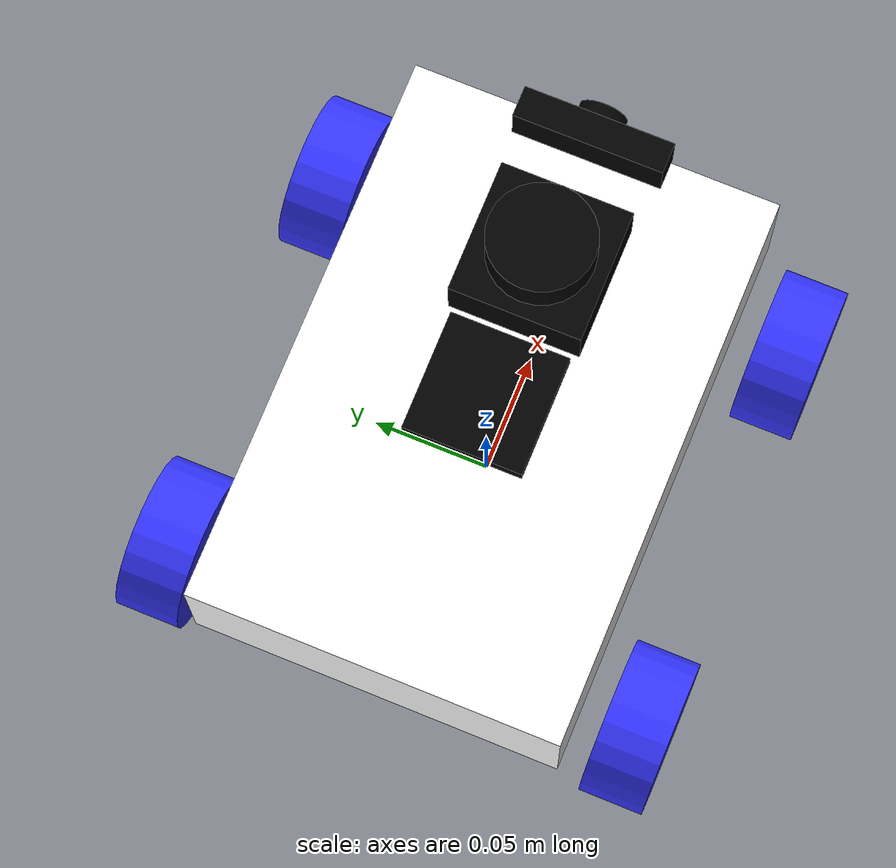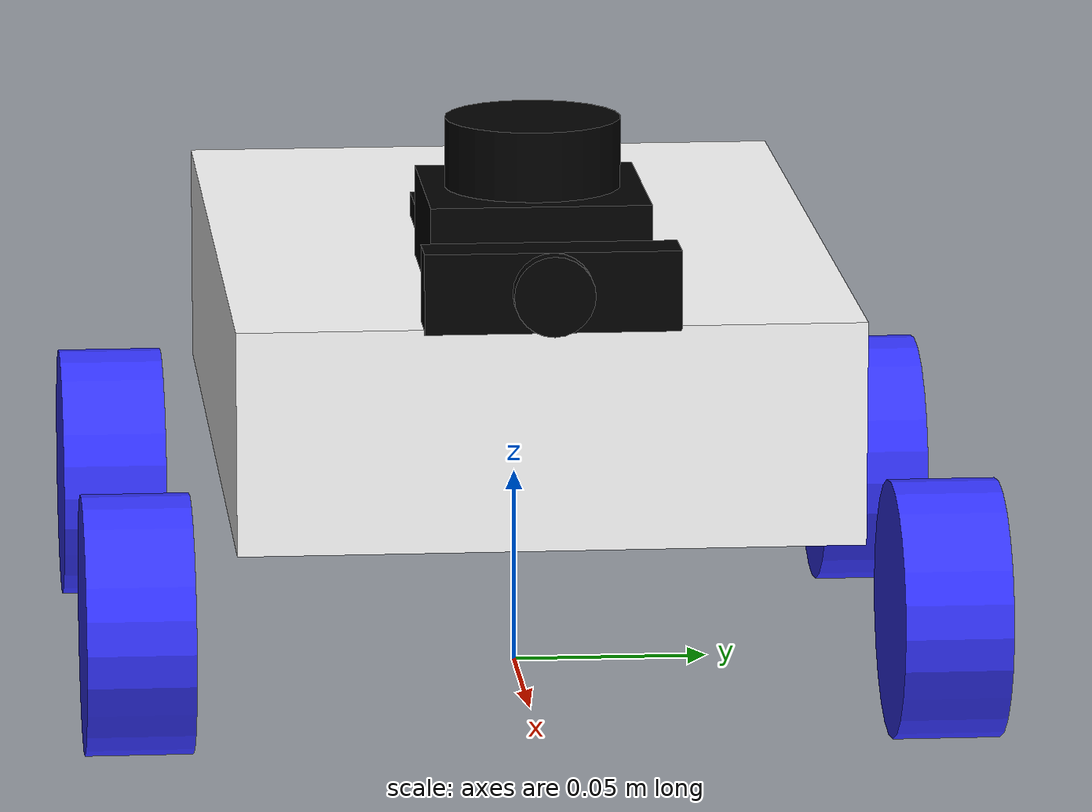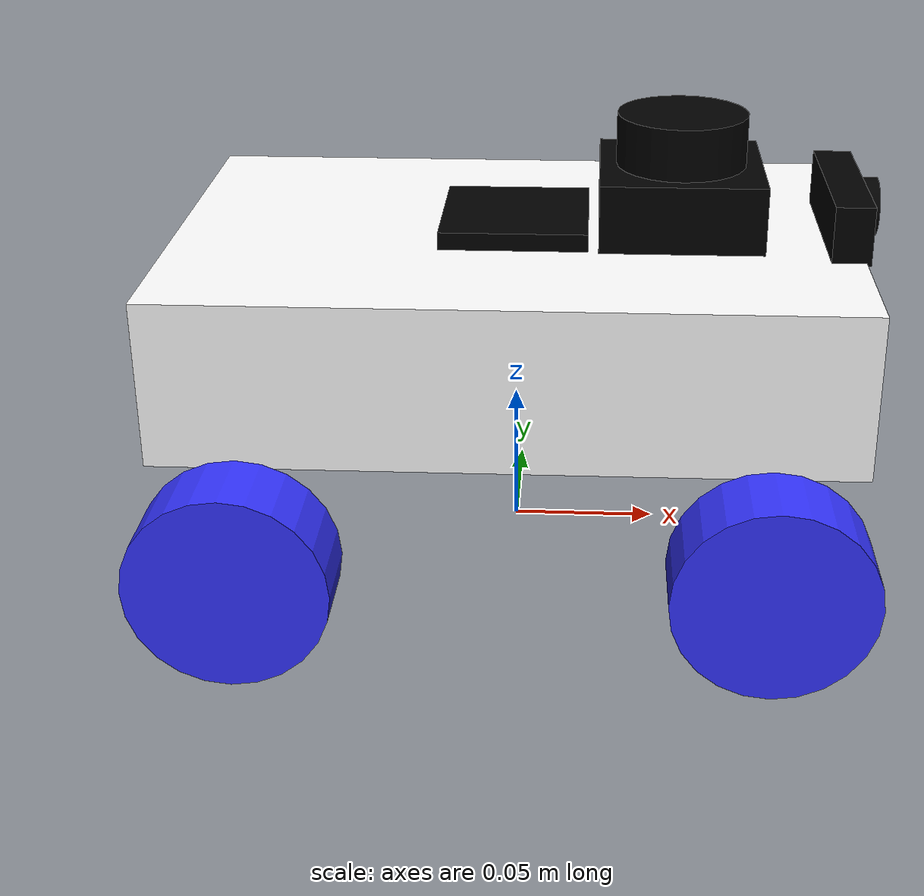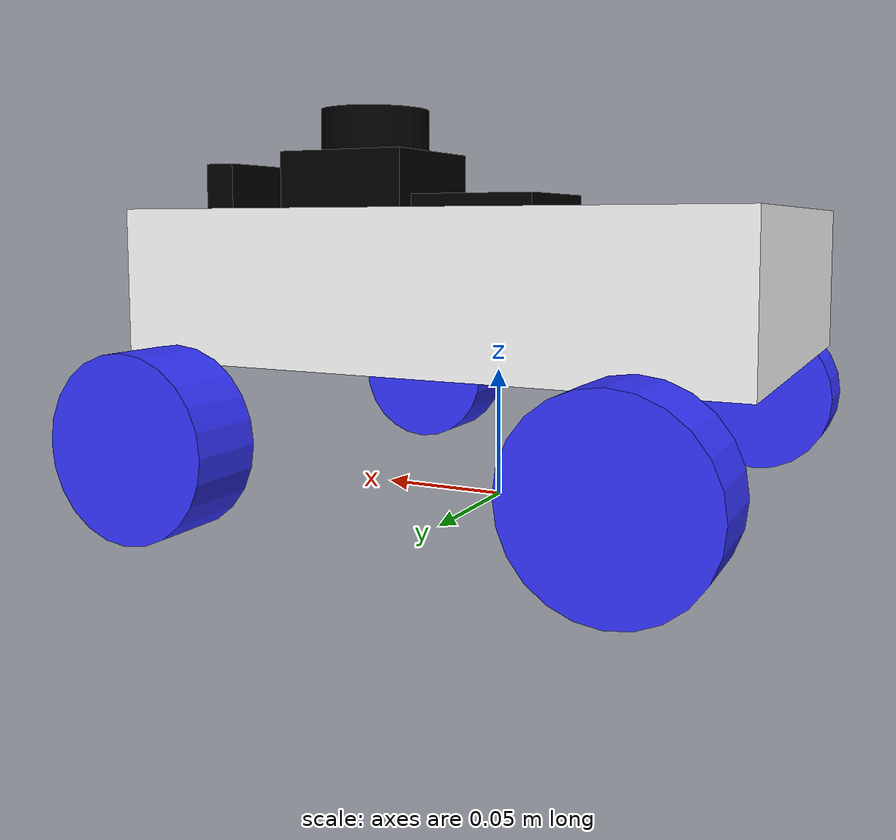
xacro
<?xml version="1.0"?>
<robot xmlns:xacro="http://www.ros.org/wiki/xacro"  name="robot">

    <xacro:arg name="use_ros2_control" default="true"/>
    <xacro:arg name="sim_mode" default="false"/>

    <xacro:include filename="robot_core.xacro" />

    <xacro:if value="$(arg use_ros2_control)">
        <xacro:include filename="ros2_control.xacro" />
    </xacro:if>
    <xacro:unless value="$(arg use_ros2_control)">
        <xacro:include filename="gazebo_control.xacro" />
    </xacro:unless>
    <xacro:include filename="lidar.xacro" />

    <xacro:include filename="camera.xacro" />

    <xacro:include filename="imu.xacro" />

</robot>

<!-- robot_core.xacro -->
<robot xmlns:xacro="http://www.ros.org/wiki/xacro" >

    <xacro:include filename="inertial_macros.xacro"/>

    <xacro:property name="chassis_length" value="0.335"/>
    <xacro:property name="chassis_width" value="0.265"/>
    <xacro:property name="chassis_height" value="0.138"/>
    <xacro:property name="chassis_mass" value="1.0"/>
    <xacro:property name="wheel_radius" value="0.033"/>
    <xacro:property name="wheel_thickness" value="0.026"/>
    <xacro:property name="wheel_mass" value="0.05"/>
    <xacro:property name="wheel_offset_x" value="0.226"/>
    <xacro:property name="wheel_offset_y" value="0.1485"/>
    <xacro:property name="wheel_offset_z" value="0.01"/>
    <xacro:property name="caster_wheel_radius" value="0.01"/>
    <xacro:property name="caster_wheel_mass" value="0.01"/>
    <xacro:property name="caster_wheel_offset_x" value="0.075"/>
    <xacro:property name="caster_wheel_offset_z" value="${wheel_offset_z - wheel_radius + caster_wheel_radius}"/>

    <material name="white">
        <color rgba="1 1 1 1" />
    </material>

    <material name="orange">
        <color rgba="1 0.3 0.1 1"/>
    </material>

    <material name="blue">
        <color rgba="0.2 0.2 1 1"/>
    </material>

    <material name="black">
        <color rgba="0 0 0 1"/>
    </material>

    <material name="red">
        <color rgba="1 0 0 1"/>
    </material>

    <!-- BASE LINK -->

    <link name="base_link">

    </link>

    <!-- BASE FOOOTPRINT -->
    <joint name= "base_footprint_joint" type="fixed">
        <parent link="base_link"/>
        <child link="base_footprint"/>
        <origin xyz= "0 0 0" rpy= "0 0 0"/>
    </joint>

    <link name= "base_footprint">

    </link>

    <!-- CHASSIS LINK -->

    <joint name="chassis_joint" type="fixed">
        <parent link="base_link"/>
        <child link="chassis"/>
        <origin xyz="-0.116 0 0.057"/>
    </joint>

    <link name="chassis">
        <visual>
            <origin xyz="0.116 0 0.028"/>
            <geometry>
                <box size="0.232 0.155 0.056"/>
            </geometry>
            <material name="white"/>
        </visual>
        <collision>
            <origin xyz="0.116 0 0.028"/>
            <geometry>
                <box size="0.232 0.155 0.056"/>
            </geometry>
        </collision>
        <xacro:inertial_box mass="0.5" x="0.232" y="0.155" z="0.056">
            <origin xyz="0.116 0 0.028" rpy="0 0 0"/>
        </xacro:inertial_box>
    </link>

    <gazebo reference="chassis">
        <material>Gazebo/White</material>
    </gazebo>

    <!-- rear LEFT WHEEL LINK -->

    <joint name="left_wheel_joint" type="continuous">
        <parent link="base_link"/>
        <child link="left_wheel"/>
        <origin xyz="-0.084 0.101 0.0325" rpy="-${pi/2} 0 0" />
        <axis xyz="0 0 1"/>
    </joint>

    <link name="left_wheel">
        <visual>
            <geometry>
                <cylinder radius="0.0325" length="0.027"/>
            </geometry>
            <material name="blue"/>
        </visual>
        <collision>
            <geometry>
                <sphere radius="0.0325" />
            </geometry>
        </collision>
        <xacro:inertial_cylinder mass="0.1" length="0.027" radius="0.0325">
            <origin xyz="0 0 0" rpy="0 0 0"/>
        </xacro:inertial_cylinder>
    </link>

    <gazebo reference="left_wheel">
        <material>Gazebo/Blue</material>
    </gazebo>

    <!-- rear RIGHT WHEEL LINK -->

    <joint name="right_wheel_joint" type="continuous">
        <parent link="base_link"/>
        <child link="right_wheel"/>
        <origin xyz="-0.084 -0.101 0.0325" rpy="${pi/2} 0 0" />
        <axis xyz="0 0 -1"/>
    </joint>

    <link name="right_wheel">
        <visual>
            <geometry>
                <cylinder radius="0.0325" length="0.027"/>
            </geometry>
            <material name="blue"/>
        </visual>
        <collision>
            <geometry>
                <sphere radius="0.0325" />
            </geometry>
        </collision>
        <xacro:inertial_cylinder mass="0.1" length="0.027" radius="0.0325">
            <origin xyz="0 0 0" rpy="0 0 0"/>
        </xacro:inertial_cylinder>
    </link>

    <gazebo reference="right_wheel">
        <material>Gazebo/Blue</material>
    </gazebo>

 <!-- front LEFT WHEEL LINK -->

    <joint name="front_left_wheel_joint" type="continuous">
        <parent link="base_link"/>
        <child link="front_left_wheel"/>
        <origin xyz="0.084 0.101 0.0325" rpy="-${pi/2} 0 0" />
        <axis xyz="0 0 1"/>
    </joint>

    <link name="front_left_wheel">
        <visual>
            <geometry>
                <cylinder radius="0.0325" length="0.027"/>
            </geometry>
            <material name="blue"/>
        </visual>
        <collision>
            <geometry>
                <sphere radius="0.0325" />
            </geometry>
        </collision>
        <xacro:inertial_cylinder mass="0.1" length="0.027" radius="0.0325">
            <origin xyz="0 0 0" rpy="0 0 0"/>
        </xacro:inertial_cylinder>
    </link>

    <gazebo reference="front_left_wheel">
        <material>Gazebo/Blue</material>
    </gazebo>

    <!-- front RIGHT WHEEL LINK -->

    <joint name="front_right_wheel_joint" type="continuous">
        <parent link="base_link"/>
        <child link="front_right_wheel"/>
        <origin xyz="0.084 -0.101 0.0325" rpy="${pi/2} 0 0" />
        <axis xyz="0 0 -1"/>
    </joint>

    <link name="front_right_wheel">
        <visual>
            <geometry>
                <cylinder radius="0.0325" length="0.027"/>
            </geometry>
            <material name="blue"/>
        </visual>
        <collision>
            <geometry>
                <sphere radius="0.0325" />
            </geometry>
        </collision>
        <xacro:inertial_cylinder mass="0.1" length="0.027" radius="0.0325">
            <origin xyz="0 0 0" rpy="0 0 0"/>
        </xacro:inertial_cylinder>
    </link>

    <gazebo reference="front_right_wheel">
        <material>Gazebo/Blue</material>
    </gazebo>

</robot>

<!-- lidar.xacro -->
<robot xmlns:xacro="http://www.ros.org/wiki/xacro" >

    <joint name="laser_joint" type="fixed">
        <parent link="chassis"/>
        <child link="laser_frame"/>
        <origin xyz="0.172 0 0.085" rpy="0 0 0"/>
        <!-- the rplidar c1 has it laser scans emmitted at a height of 29.8mm from the base od the sensor, this was added to the height of the chasis to get 85mm used above -->
    </joint>

    <link name="laser_frame">
        <visual>
            <origin xyz="0 0 -0.017"/>
            <geometry>
                <box size="0.055 0.055 0.023"/>
            </geometry>
            <material name="black"/>
        </visual>
        <visual>
            <origin xyz="0 0 0.003"/>
            <geometry>
                <cylinder radius="0.022" length="0.018"/>
            </geometry>
            <material name="black"/>
        </visual>
        <collision>
            <geometry>
                <cylinder radius="0.022" length="0.018"/>
            </geometry>
        </collision>
        <xacro:inertial_cylinder mass="0.1" length="0.018" radius="0.022">
            <origin xyz="0 0 0.003" rpy="0 0 0"/>
        </xacro:inertial_cylinder>
    </link>

    <gazebo reference="laser_frame">
        <material>Gazebo/Black</material>

        <sensor name="laser" type="gpu_lidar">
            <pose> 0 0 0 0 0 0 </pose>
            <visualize>false</visualize>
            <update_rate>10</update_rate>
            <lidar>
                <scan>
                    <horizontal>
                        <samples>360</samples>
                        <min_angle>-3.14</min_angle>
                        <max_angle>3.14</max_angle>
                    </horizontal>
                </scan>
                <range>
                    <min>0.05</min>
                    <max>12</max>
                </range>
            </lidar>
                <topic>scan</topic>
                <gz_frame_id>laser_frame</gz_frame_id>
        </sensor>
    </gazebo>

</robot>

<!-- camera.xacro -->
<robot xmlns:xacro="http://www.ros.org/wiki/xacro" >

    <joint name="camera_joint" type="fixed">
        <parent link="chassis"/>
        <child link="camera_link"/>
        <origin xyz="0.227 0 0.065" rpy="0 0 0"/>
    </joint>

    <link name="camera_link">
        <visual>
            <geometry>
                <box size="0.013 0.063 0.020"/>
            </geometry>
            <material name="black"/>
        </visual>
        <visual>
            <origin xyz="0.009 0 0" rpy="0 -${pi/2} 0"/>
            <geometry>
                <cylinder radius="0.010" length="0.005"/>
            </geometry>
            <material name="black"/>
        </visual>
    </link>

    <joint name="camera_optical_joint" type="fixed">
        <parent link="camera_link"/>
        <child link="camera_link_optical"/>
        <origin xyz="0 0 0" rpy="${-pi/2} 0 ${-pi/2}"/>
    </joint>

    <link name="camera_link_optical"></link>

    <gazebo reference="camera_link">
        <material>Gazebo/Black</material>

        <sensor name="camera" type="camera">
            <pose> 0 0 0 0 0 0 </pose>
            <visualize>true</visualize>
            <update_rate>10</update_rate>
            <camera>
                <camera_info_topic>camera/camera_info</camera_info_topic>
                <horizontal_fov>1.089</horizontal_fov>
                <image>
                    <format>R8G8B8</format>
                    <width>640</width>
                    <height>480</height>
                </image>
                <clip>
                    <near>0.05</near>
                    <far>8.0</far>
                </clip>
            </camera>
            <topic>camera/image_raw</topic>
            <gz_frame_id>camera_link_optical</gz_frame_id>
        </sensor>
    </gazebo>

</robot>

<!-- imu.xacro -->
<robot xmlns:xacro="http://www.ros.org/wiki/xacro" >

    <joint name="imu_joint" type="fixed">
        <parent link="chassis"/>
        <child link="imu"/>
        <origin xyz="0.116 0 0.002" rpy="0 0 0"/>
        <!-- the rplidar c1 has it laser scans emmitted at a height of 29.8mm from the base od the sensor, this was added to the height of the chasis to get 85mm used above -->
    </joint>

    <link name="imu">
        <visual>
            <origin xyz="0 0 0.05"/>
            <geometry>
                <box size="0.05 0.05 0.02"/>
            </geometry>
            <material name="black"/>
        </visual>
    </link>

</robot>
